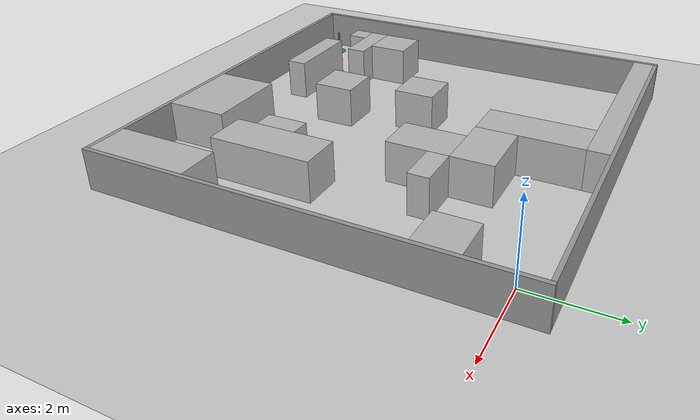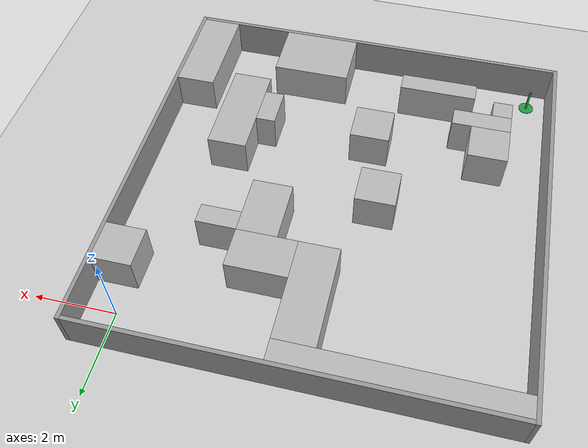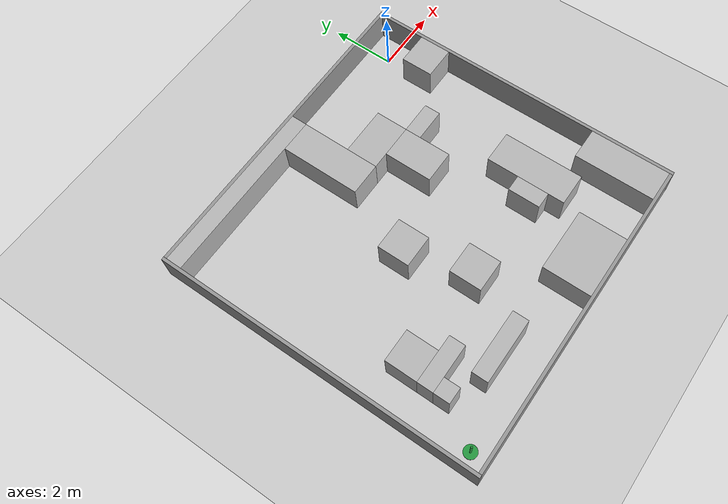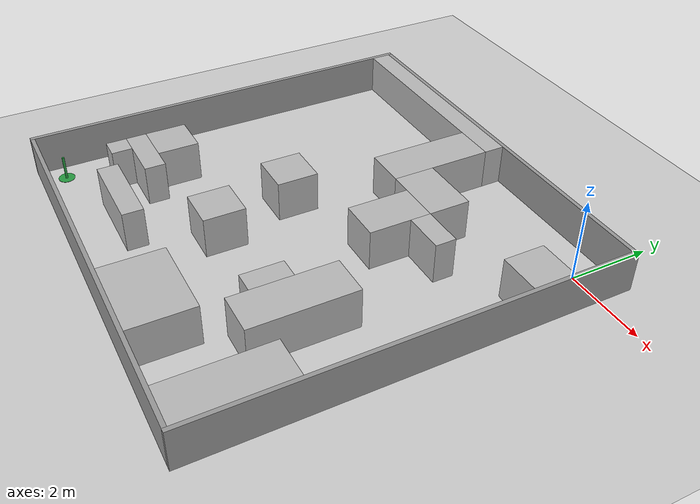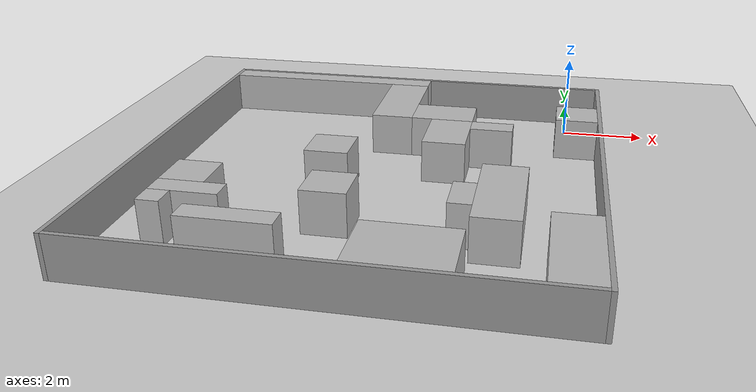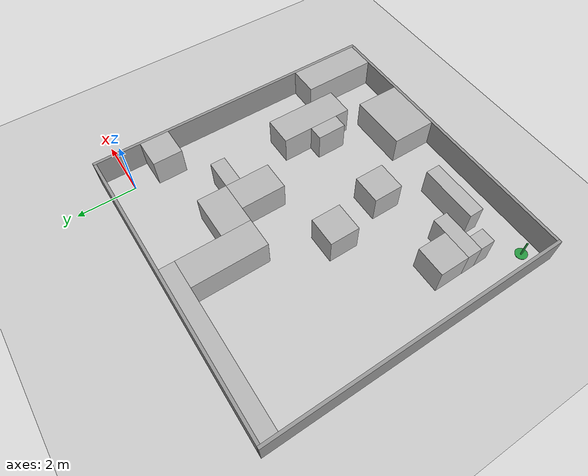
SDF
<sdf version="1.6">
 <world name="default">
  <light name="sun" type="directional">
   <pose>0 0 10 0 -0 0</pose>
   <diffuse>0.8 0.8 0.8 1</diffuse>
   <specular>0.1 0.1 0.1 1</specular>
   <attenuation>
    <range>1000</range>
    <constant>0.9</constant>
    <linear>0.01</linear>
    <quadratic>0.001</quadratic>
   </attenuation>
   <direction>-0.5 0.5 -1</direction>
  </light>
  <model name="ground_plane">
   <static>1</static>
   <link name="link">
    <collision name="collision">
     <geometry><plane><normal>0 0 1</normal><size>100 100</size></plane></geometry>
     <surface><friction><ode><mu>100</mu><mu2>50</mu2></ode></friction></surface>
    </collision>
    <visual name="visual">
     <cast_shadows>0</cast_shadows>
     <geometry><plane><normal>0 0 1</normal><size>100 100</size></plane></geometry>
     <material>
      <script><uri>file://media/materials/scripts/gazebo.material</uri><name>Gazebo/Grey</name></script>
     </material>
    </visual>
   </link>
  </model>
  <gravity>0 0 -9.8</gravity>
  <magnetic_field>6e-06 2.3e-05 -4.2e-05</magnetic_field>
  <atmosphere type="adiabatic"/>
  <physics name="default_physics" default="0" type="ode">
   <max_step_size>0.001</max_step_size>
   <real_time_factor>1</real_time_factor>
   <real_time_update_rate>1000</real_time_update_rate>
  </physics>
  <scene><ambient>0.4 0.4 0.4 1</ambient><background>0.7 0.7 0.7 1</background><shadows>1</shadows></scene>
  <spherical_coordinates>
   <surface_model>EARTH_WGS84</surface_model>
   <latitude_deg>0</latitude_deg>
   <longitude_deg>0</longitude_deg>
   <elevation>0</elevation>
   <heading_deg>0</heading_deg>
  </spherical_coordinates>
  <model name="wall_0">
   <static>1</static>
   <pose>-4.25 0.8 0.5 0 0 0</pose>
   <link name="l">
    <collision name="c"><geometry><box><size>10.0 0.1 1.0</size></box></geometry></collision>
    <visual name="v">
     <geometry><box><size>10.0 0.1 1.0</size></box></geometry>
     <material><ambient>0.6 0.6 0.6 1</ambient><diffuse>0.6 0.6 0.6 1</diffuse></material>
    </visual>
   </link>
  </model>
  <model name="wall_1">
   <static>1</static>
   <pose>-4.25 -9.3 0.5 0 0 0</pose>
   <link name="l">
    <collision name="c"><geometry><box><size>10.0 0.1 1.0</size></box></geometry></collision>
    <visual name="v">
     <geometry><box><size>10.0 0.1 1.0</size></box></geometry>
     <material><ambient>0.6 0.6 0.6 1</ambient><diffuse>0.6 0.6 0.6 1</diffuse></material>
    </visual>
   </link>
  </model>
  <model name="wall_2">
   <static>1</static>
   <pose>-9.3 -4.25 0.5 0 0 0</pose>
   <link name="l">
    <collision name="c"><geometry><box><size>0.1 10.2 1.0</size></box></geometry></collision>
    <visual name="v">
     <geometry><box><size>0.1 10.2 1.0</size></box></geometry>
     <material><ambient>0.6 0.6 0.6 1</ambient><diffuse>0.6 0.6 0.6 1</diffuse></material>
    </visual>
   </link>
  </model>
  <model name="wall_3">
   <static>1</static>
   <pose>0.8 -4.25 0.5 0 0 0</pose>
   <link name="l">
    <collision name="c"><geometry><box><size>0.1 10.2 1.0</size></box></geometry></collision>
    <visual name="v">
     <geometry><box><size>0.1 10.2 1.0</size></box></geometry>
     <material><ambient>0.6 0.6 0.6 1</ambient><diffuse>0.6 0.6 0.6 1</diffuse></material>
    </visual>
   </link>
  </model>
  <model name="obs_0">
   <static>1</static>
   <pose>-6.5 0.5 0.5 0 0 0</pose>
   <link name="l">
    <collision name="c"><geometry><box><size>5.5 0.5 1.0</size></box></geometry></collision>
    <visual name="v">
     <geometry><box><size>5.5 0.5 1.0</size></box></geometry>
     <material><ambient>0.72 0.72 0.72 1</ambient><diffuse>0.72 0.72 0.72 1</diffuse></material>
    </visual>
   </link>
  </model>
  <model name="obs_1">
   <static>1</static>
   <pose>-4.25 -1.0 0.5 0 0 0</pose>
   <link name="l">
    <collision name="c"><geometry><box><size>1.0 2.5 1.0</size></box></geometry></collision>
    <visual name="v">
     <geometry><box><size>1.0 2.5 1.0</size></box></geometry>
     <material><ambient>0.72 0.72 0.72 1</ambient><diffuse>0.72 0.72 0.72 1</diffuse></material>
    </visual>
   </link>
  </model>
  <model name="obs_2">
   <static>1</static>
   <pose>-3.0 -1.75 0.5 0 0 0</pose>
   <link name="l">
    <collision name="c"><geometry><box><size>1.5 1.0 1.0</size></box></geometry></collision>
    <visual name="v">
     <geometry><box><size>1.5 1.0 1.0</size></box></geometry>
     <material><ambient>0.72 0.72 0.72 1</ambient><diffuse>0.72 0.72 0.72 1</diffuse></material>
    </visual>
   </link>
  </model>
  <model name="obs_3">
   <static>1</static>
   <pose>-2.75 -3.0 0.5 0 0 0</pose>
   <link name="l">
    <collision name="c"><geometry><box><size>1.0 1.5 1.0</size></box></geometry></collision>
    <visual name="v">
     <geometry><box><size>1.0 1.5 1.0</size></box></geometry>
     <material><ambient>0.72 0.72 0.72 1</ambient><diffuse>0.72 0.72 0.72 1</diffuse></material>
    </visual>
   </link>
  </model>
  <model name="obs_4">
   <static>1</static>
   <pose>-1.75 -2.5 0.5 0 0 0</pose>
   <link name="l">
    <collision name="c"><geometry><box><size>1.0 0.5 1.0</size></box></geometry></collision>
    <visual name="v">
     <geometry><box><size>1.0 0.5 1.0</size></box></geometry>
     <material><ambient>0.72 0.72 0.72 1</ambient><diffuse>0.72 0.72 0.72 1</diffuse></material>
    </visual>
   </link>
  </model>
  <model name="obs_5">
   <static>1</static>
   <pose>0.25 -1.25 0.5 0 0 0</pose>
   <link name="l">
    <collision name="c"><geometry><box><size>1.0 1.0 1.0</size></box></geometry></collision>
    <visual name="v">
     <geometry><box><size>1.0 1.0 1.0</size></box></geometry>
     <material><ambient>0.72 0.72 0.72 1</ambient><diffuse>0.72 0.72 0.72 1</diffuse></material>
    </visual>
   </link>
  </model>
  <model name="obs_6">
   <static>1</static>
   <pose>-5.25 -4.25 0.5 0 0 0</pose>
   <link name="l">
    <collision name="c"><geometry><box><size>1.0 1.0 1.0</size></box></geometry></collision>
    <visual name="v">
     <geometry><box><size>1.0 1.0 1.0</size></box></geometry>
     <material><ambient>0.72 0.72 0.72 1</ambient><diffuse>0.72 0.72 0.72 1</diffuse></material>
    </visual>
   </link>
  </model>
  <model name="obs_7">
   <static>1</static>
   <pose>-7.75 -6.25 0.5 0 0 0</pose>
   <link name="l">
    <collision name="c"><geometry><box><size>1.0 1.0 1.0</size></box></geometry></collision>
    <visual name="v">
     <geometry><box><size>1.0 1.0 1.0</size></box></geometry>
     <material><ambient>0.72 0.72 0.72 1</ambient><diffuse>0.72 0.72 0.72 1</diffuse></material>
    </visual>
   </link>
  </model>
  <model name="obs_8">
   <static>1</static>
   <pose>-7.5 -7.0 0.5 0 0 0</pose>
   <link name="l">
    <collision name="c"><geometry><box><size>1.5 0.5 1.0</size></box></geometry></collision>
    <visual name="v">
     <geometry><box><size>1.5 0.5 1.0</size></box></geometry>
     <material><ambient>0.72 0.72 0.72 1</ambient><diffuse>0.72 0.72 0.72 1</diffuse></material>
    </visual>
   </link>
  </model>
  <model name="obs_9">
   <static>1</static>
   <pose>-8.0 -7.5 0.5 0 0 0</pose>
   <link name="l">
    <collision name="c"><geometry><box><size>0.5 0.5 1.0</size></box></geometry></collision>
    <visual name="v">
     <geometry><box><size>0.5 0.5 1.0</size></box></geometry>
     <material><ambient>0.72 0.72 0.72 1</ambient><diffuse>0.72 0.72 0.72 1</diffuse></material>
    </visual>
   </link>
  </model>
  <model name="obs_10">
   <static>1</static>
   <pose>-6.25 -8.0 0.5 0 0 0</pose>
   <link name="l">
    <collision name="c"><geometry><box><size>2.0 0.5 1.0</size></box></geometry></collision>
    <visual name="v">
     <geometry><box><size>2.0 0.5 1.0</size></box></geometry>
     <material><ambient>0.72 0.72 0.72 1</ambient><diffuse>0.72 0.72 0.72 1</diffuse></material>
    </visual>
   </link>
  </model>
  <model name="obs_11">
   <static>1</static>
   <pose>-4.75 -6.25 0.5 0 0 0</pose>
   <link name="l">
    <collision name="c"><geometry><box><size>1.0 1.0 1.0</size></box></geometry></collision>
    <visual name="v">
     <geometry><box><size>1.0 1.0 1.0</size></box></geometry>
     <material><ambient>0.72 0.72 0.72 1</ambient><diffuse>0.72 0.72 0.72 1</diffuse></material>
    </visual>
   </link>
  </model>
  <model name="obs_12">
   <static>1</static>
   <pose>-2.75 -8.5 0.5 0 0 0</pose>
   <link name="l">
    <collision name="c"><geometry><box><size>2.0 1.5 1.0</size></box></geometry></collision>
    <visual name="v">
     <geometry><box><size>2.0 1.5 1.0</size></box></geometry>
     <material><ambient>0.72 0.72 0.72 1</ambient><diffuse>0.72 0.72 0.72 1</diffuse></material>
    </visual>
   </link>
  </model>
  <model name="obs_13">
   <static>1</static>
   <pose>-1.25 -6.0 0.5 0 0 0</pose>
   <link name="l">
    <collision name="c"><geometry><box><size>1.0 2.5 1.0</size></box></geometry></collision>
    <visual name="v">
     <geometry><box><size>1.0 2.5 1.0</size></box></geometry>
     <material><ambient>0.72 0.72 0.72 1</ambient><diffuse>0.72 0.72 0.72 1</diffuse></material>
    </visual>
   </link>
  </model>
  <model name="obs_14">
   <static>1</static>
   <pose>-2.0 -6.25 0.5 0 0 0</pose>
   <link name="l">
    <collision name="c"><geometry><box><size>0.5 1.0 1.0</size></box></geometry></collision>
    <visual name="v">
     <geometry><box><size>0.5 1.0 1.0</size></box></geometry>
     <material><ambient>0.72 0.72 0.72 1</ambient><diffuse>0.72 0.72 0.72 1</diffuse></material>
    </visual>
   </link>
  </model>
  <model name="obs_15">
   <static>1</static>
   <pose>0.25 -8.0 0.5 0 0 0</pose>
   <link name="l">
    <collision name="c"><geometry><box><size>1.0 2.5 1.0</size></box></geometry></collision>
    <visual name="v">
     <geometry><box><size>1.0 2.5 1.0</size></box></geometry>
     <material><ambient>0.72 0.72 0.72 1</ambient><diffuse>0.72 0.72 0.72 1</diffuse></material>
    </visual>
   </link>
  </model>
  <model name="goal_marker">
   <static>1</static>
   <pose>-8.75 -8.75 0 0 0 0</pose>
   <link name="l">
    <visual name="pad">
     <pose>0 0 0.005 0 0 0</pose>
     <geometry><cylinder><radius>0.2</radius><length>0.01</length></cylinder></geometry>
     <material><ambient>0.15 0.6 0.25 1</ambient><diffuse>0.15 0.6 0.25 1</diffuse></material>
    </visual>
    <visual name="pole">
     <pose>0 0 0.3 0 0 0</pose>
     <geometry><cylinder><radius>0.03</radius><length>0.6</length></cylinder></geometry>
     <material><ambient>0.15 0.6 0.25 1</ambient><diffuse>0.15 0.6 0.25 1</diffuse></material>
    </visual>
   </link>
  </model>
 </world>
</sdf>
